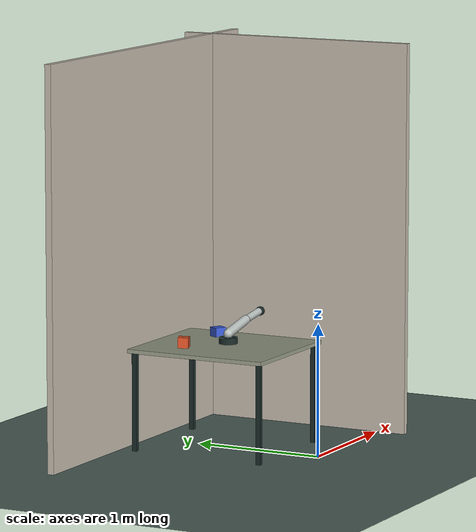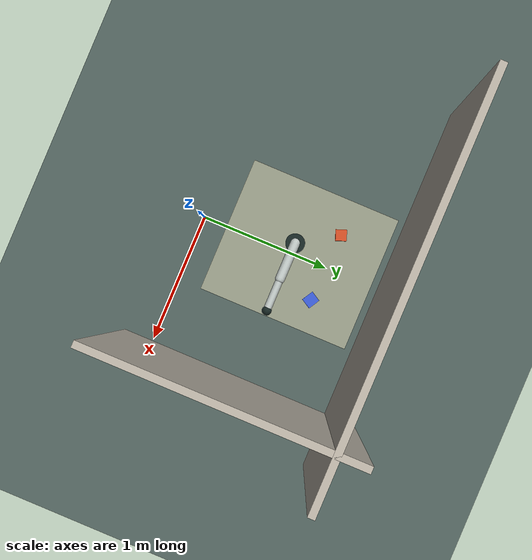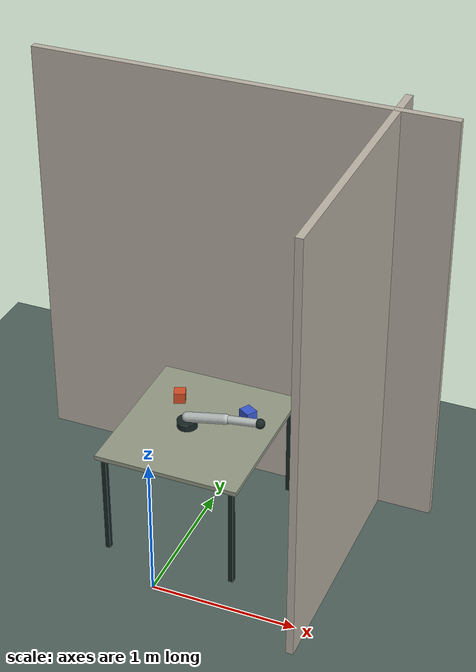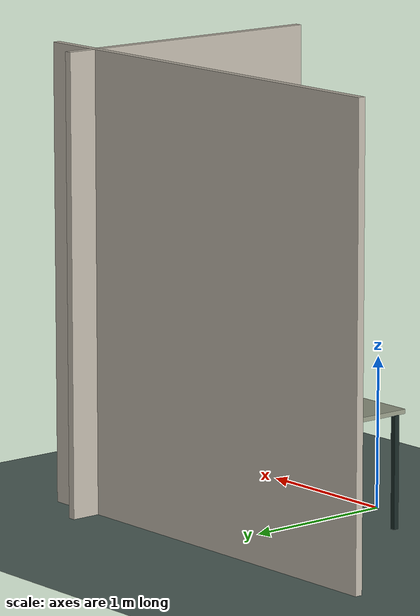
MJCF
<mujoco model="nelif_table_arm_spin">
  <compiler angle="radian" autolimits="true"/>
  <option timestep="0.005" gravity="0 0 -9.81"/>

  <visual>
    <global offwidth="512" offheight="512"/>
    <quality shadowsize="2048" offsamples="0"/>
    <headlight ambient="0 0 0" diffuse="0 0 0" specular="0 0 0"/>
    <map znear="0.01" zfar="20"/>
  </visual>

  <default>
    <joint damping="0.05"/>
  </default>

  <asset>
    <material name="floor" rgba="0.31 0.38 0.36 1" specular="0.10" shininess="0.25"/>
    <material name="wall" rgba="0.73 0.70 0.65 1" specular="0.10" shininess="0.25"/>
    <material name="table" rgba="0.58 0.60 0.52 1" specular="0.12" shininess="0.30"/>
    <material name="dark" rgba="0.09 0.15 0.14 1" specular="0.22" shininess="0.35"/>
    <material name="robot" rgba="0.72 0.75 0.74 1" specular="0.28" shininess="0.58"/>
    <material name="red" rgba="0.82 0.30 0.14 1" specular="0.18" shininess="0.40"/>
    <material name="blue" rgba="0.22 0.35 0.82 1" specular="0.18" shininess="0.42"/>
  </asset>

  <worldbody>
    <camera name="nelif_fixed_cam" mode="fixed" pos="-1.62 0.58 1.62"
            xyaxes="0.18 -0.984 0 0.37 0.068 0.926" fovy="68"/>
    <light name="nelif_key_light" mode="fixed" type="point" castshadow="true"
           pos="-0.55 0.98 2.45" dir="0.30 -0.13 -0.94"
           diffuse="0.94 0.91 0.88" specular="0.45 0.45 0.45"
           intensity="0.95" bulbradius="0.22" cutoff="55"/>

    <geom name="floor" type="plane" pos="0 0 0" size="3 3 0.02" material="floor"/>
    <geom name="back_wall" type="box" pos="0 1.45 1.5" size="1.45 0.025 1.5" material="wall"/>
    <geom name="right_wall" type="box" pos="1.05 0.72 1.5" size="0.025 0.95 1.5" material="wall"/>
    <geom name="table_top" type="box" pos="0 0.78 0.765" size="0.50 0.56 0.015" material="table"/>
    <geom name="table_leg_00" type="box" pos="-0.45 0.26 0.375" size="0.018 0.018 0.375" material="dark"/>
    <geom name="table_leg_01" type="box" pos="-0.45 1.30 0.375" size="0.018 0.018 0.375" material="dark"/>
    <geom name="table_leg_10" type="box" pos="0.45 0.26 0.375" size="0.018 0.018 0.375" material="dark"/>
    <geom name="table_leg_11" type="box" pos="0.45 1.30 0.375" size="0.018 0.018 0.375" material="dark"/>
    <geom name="red_block" type="box" pos="-0.24 1.00 0.82" size="0.04 0.04 0.04" material="red" quat="0.985 0 0 0.174"/>
    <geom name="blue_block" type="box" pos="0.27 0.98 0.82" size="0.045 0.04 0.035" material="blue" quat="0.966 0 0 -0.259"/>

    <body name="arm_base" pos="-0.06 0.72 0.83">
      <geom name="base" type="cylinder" size="0.07 0.025" material="dark"/>
      <body name="link1" pos="0 0 0.05">
        <joint name="shoulder" type="hinge" axis="0 0 1"/>
        <geom name="link1_geom" type="capsule" fromto="0 0 0 0.28 0 0.06" size="0.035" material="robot"/>
        <body name="link2" pos="0.28 0 0.06">
          <joint name="elbow" type="hinge" axis="0 0 1"/>
          <geom name="link2_geom" type="capsule" fromto="0 0 0 0.22 0 0.03" size="0.028" material="robot"/>
          <geom name="wrist" type="sphere" pos="0.24 0 0.03" size="0.035" material="dark"/>
        </body>
      </body>
    </body>
  </worldbody>

  <keyframe>
    <key name="spin" qpos="0 0.7" qvel="1.6 -1.1"/>
  </keyframe>
</mujoco>
